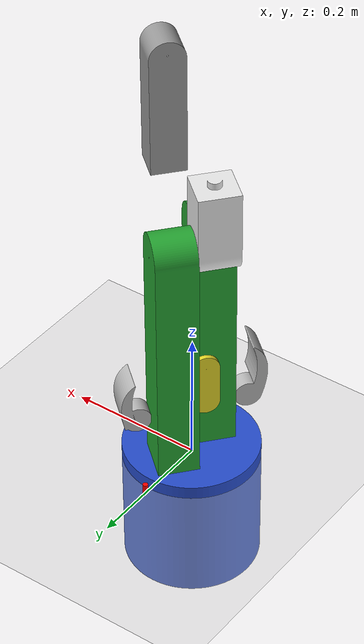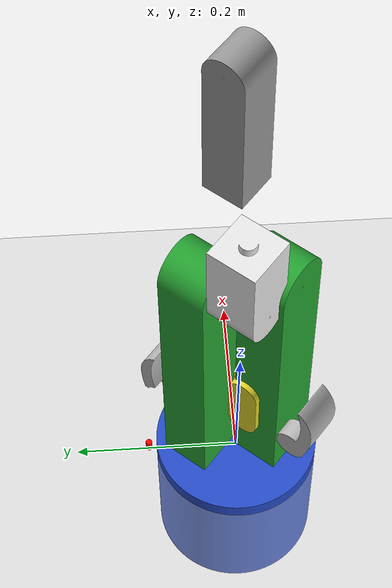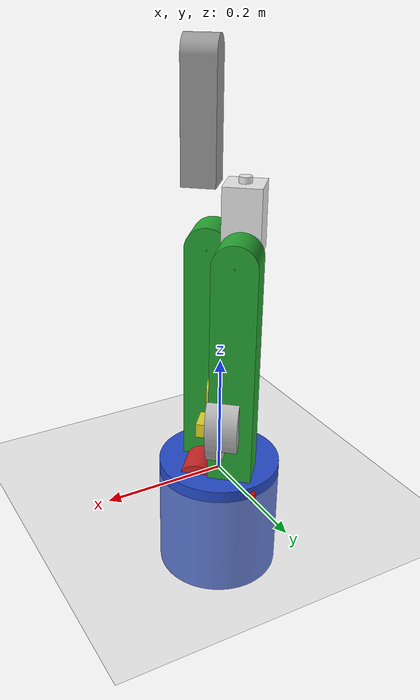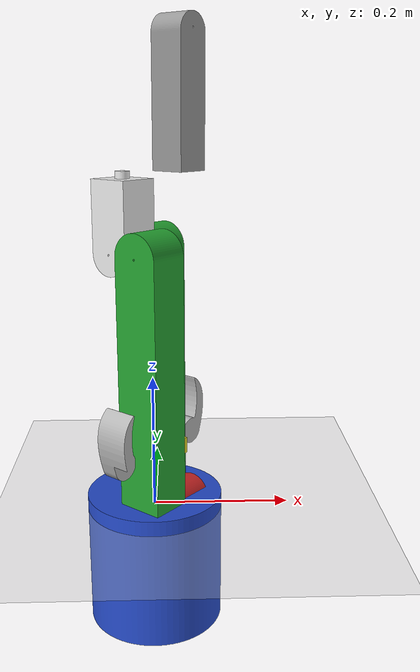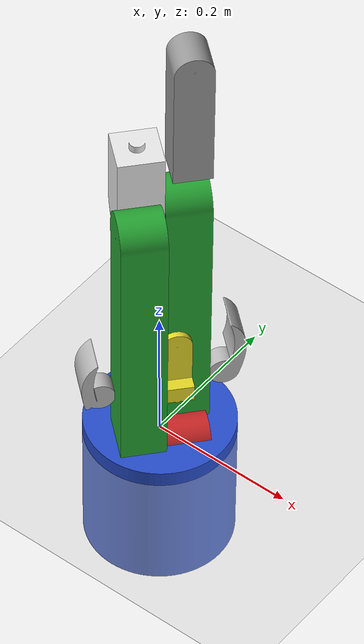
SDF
<sdf version="1.7">
 <world name="default">
  <model name="ground_plane">
   <static>1</static>
   <link name="link">
    <collision name="collision">
     <geometry><plane><normal>0 0 1</normal><size>100 100</size></plane></geometry>
     <surface><friction><ode><mu>100</mu><mu2>50</mu2></ode></friction></surface>
    </collision>
    <visual name="visual">
     <cast_shadows>0</cast_shadows>
     <geometry><plane><normal>0 0 1</normal><size>100 100</size></plane></geometry>
     <material>
      <script><uri>file://media/materials/scripts/gazebo.material</uri><name>Gazebo/Grey</name></script>
     </material>
    </visual>
   </link>
  </model>
  <model name="GS_arm">
   <joint name="joint_0" type="fixed">
    <pose relative_to="__model__">0 0 0 0 -0 0</pose>
    <parent>world</parent>
    <child>part_1</child>
   </joint>
   <link name="part_1">
    <pose relative_to="joint_0">0 0 0 0 -0 0</pose>
    <inertial>
     <pose>3.9e-05 0.000294 0.009984 0 -0 0</pose>
     <mass>0.0066099</mass>
     <inertia>
      <ixx>3.85576e-07</ixx>
      <ixy>-8.58175e-12</ixy>
      <ixz>-2.90426e-10</ixz>
      <iyy>3.85529e-07</iyy>
      <iyz>-1.62614e-09</iyz>
      <izz>3.30545e-07</izz>
     </inertia>
    </inertial>
    <collision name="part_1_collision">
     <pose>-0.048516 -0.048382 0.021683 -2.96311 -1.54079 1.39406</pose>
     <geometry>
      <mesh>
       <scale>1 1 1</scale>
       <uri>file:///home/nobel/workspace_arm/IRoC_U_arm/arm_ws/install/arm_description_pkg/share/arm_description_pkg/meshes_upright_xacro_copy/part_1.stl</uri>
      </mesh>
     </geometry>
    </collision>
    <visual name="part_1_visual">
     <pose>-0.048516 -0.048382 0.021683 -2.96311 -1.54079 1.39406</pose>
     <geometry>
      <mesh>
       <scale>1 1 1</scale>
       <uri>file:///home/nobel/workspace_arm/IRoC_U_arm/arm_ws/install/arm_description_pkg/share/arm_description_pkg/meshes_upright_xacro_copy/part_1.stl</uri>
      </mesh>
     </geometry>
     <material>
      <script><name>Gazebo/Blue</name><uri>file://media/materials/scripts/gazebo.material</uri></script>
     </material>
    </visual>
   </link>
   <joint name="joint1" type="revolute">
    <pose relative_to="part_1">9.2e-05 0.00059 0.019979 3.11574 -0.015232 -0.709027</pose>
    <parent>part_1</parent>
    <child>part_2</child>
    <axis>
     <xyz>0 0 1</xyz>
     <limit><lower>-3.14159</lower><upper>3.14159</upper><effort>1</effort><velocity>20</velocity></limit>
     <dynamics><spring_reference>0</spring_reference><spring_stiffness>0</spring_stiffness></dynamics>
    </axis>
   </joint>
   <link name="part_2">
    <pose relative_to="joint1">0 0 0 0 -0 0</pose>
    <inertial>
     <pose>0 -0 -0.006575 0 -0 0</pose>
     <mass>0.000480855</mass>
     <inertia>
      <ixx>9.21391e-09</ixx>
      <ixy>8.13977e-25</ixy>
      <ixz>-2.47505e-26</ixz>
      <iyy>9.28926e-09</iyy>
      <iyz>-9.64072e-27</iyz>
      <izz>2.95088e-09</izz>
     </inertia>
    </inertial>
    <collision name="part_2_collision">
     <pose>0.048859 0.002995 0.056094 0 -0 0</pose>
     <geometry>
      <mesh>
       <scale>1 1 1</scale>
       <uri>file:///home/nobel/workspace_arm/IRoC_U_arm/arm_ws/install/arm_description_pkg/share/arm_description_pkg/meshes_upright_xacro_copy/part_2.stl</uri>
      </mesh>
     </geometry>
    </collision>
    <visual name="part_2_visual">
     <pose>0.048859 0.002995 0.056094 0 -0 0</pose>
     <geometry>
      <mesh>
       <scale>1 1 1</scale>
       <uri>file:///home/nobel/workspace_arm/IRoC_U_arm/arm_ws/install/arm_description_pkg/share/arm_description_pkg/meshes_upright_xacro_copy/part_2.stl</uri>
      </mesh>
     </geometry>
     <material>
      <script><name>Gazebo/Red</name><uri>file://media/materials/scripts/gazebo.material</uri></script>
     </material>
    </visual>
   </link>
   <joint name="joint2" type="revolute">
    <pose relative_to="part_2">0 0.002995 -0.012 1.5708 -0 0</pose>
    <parent>part_2</parent>
    <child>arm_l2</child>
    <axis>
     <xyz>0 0 1</xyz>
     <limit><lower>-2.0944</lower><upper>2.0944</upper><effort>1</effort><velocity>20</velocity></limit>
     <dynamics><spring_reference>0</spring_reference><spring_stiffness>0</spring_stiffness></dynamics>
    </axis>
   </joint>
   <link name="arm_l2">
    <pose relative_to="joint2">0 0 0 0 -0 0</pose>
    <inertial>
     <pose>0 -0.019037 0.003 0 -0 0</pose>
     <mass>0.00180242</mass>
     <inertia>
      <ixx>2.9795e-07</ixx>
      <ixy>1.81175e-23</ixy>
      <ixz>3.23754e-21</ixz>
      <iyy>4.53246e-08</iyy>
      <iyz>6.38285e-22</iyz>
      <izz>2.67573e-07</izz>
     </inertia>
    </inertial>
    <collision name="arm_l2_collision">
     <pose>0.048859 0.068094 -0 -1.5708 0 0</pose>
     <geometry>
      <mesh>
       <scale>1 1 1</scale>
       <uri>file:///home/nobel/workspace_arm/IRoC_U_arm/arm_ws/install/arm_description_pkg/share/arm_description_pkg/meshes_upright_xacro_copy/part_3.stl</uri>
      </mesh>
     </geometry>
    </collision>
    <collision name="arm_l2_collision_1">
     <pose>-0.048859 0.068094 0.006 1.5708 -0 -3.14159</pose>
     <geometry>
      <mesh>
       <scale>1 1 1</scale>
       <uri>file:///home/nobel/workspace_arm/IRoC_U_arm/arm_ws/install/arm_description_pkg/share/arm_description_pkg/meshes_upright_xacro_copy/part_3.stl</uri>
      </mesh>
     </geometry>
    </collision>
    <visual name="arm_l2_visual">
     <pose>0.048859 0.068094 -0 -1.5708 0 0</pose>
     <geometry>
      <mesh>
       <scale>1 1 1</scale>
       <uri>file:///home/nobel/workspace_arm/IRoC_U_arm/arm_ws/install/arm_description_pkg/share/arm_description_pkg/meshes_upright_xacro_copy/part_3.stl</uri>
      </mesh>
     </geometry>
     <material>
      <script><name>Gazebo/Green</name><uri>file://media/materials/scripts/gazebo.material</uri></script>
     </material>
    </visual>
    <visual name="arm_l2_visual_1">
     <pose>-0.048859 0.068094 0.006 1.5708 -0 -3.14159</pose>
     <geometry>
      <mesh>
       <scale>1 1 1</scale>
       <uri>file:///home/nobel/workspace_arm/IRoC_U_arm/arm_ws/install/arm_description_pkg/share/arm_description_pkg/meshes_upright_xacro_copy/part_3.stl</uri>
      </mesh>
     </geometry>
     <material>
      <script><name>Gazebo/Green</name><uri>file://media/materials/scripts/gazebo.material</uri></script>
     </material>
    </visual>
   </link>
   <joint name="joint3" type="revolute">
    <pose relative_to="arm_l2">0 -0.03771 0 3.14159 -0 -3.1363</pose>
    <parent>arm_l2</parent>
    <child>part_4</child>
    <axis>
     <xyz>0 0 1</xyz>
     <limit><lower>-1.74533</lower><upper>1.74533</upper><effort>1</effort><velocity>20</velocity></limit>
     <dynamics><spring_reference>0</spring_reference><spring_stiffness>0</spring_stiffness></dynamics>
    </axis>
   </joint>
   <link name="part_4">
    <pose relative_to="joint3">0 0 0 0 -0 0</pose>
    <inertial>
     <pose>-0 -0.005712 -0.003 0 -0 0</pose>
     <mass>0.000534038</mass>
     <inertia>
      <ixx>1.16311e-08</ixx>
      <ixy>2.13202e-26</ixy>
      <ixz>4.94622e-25</ixz>
      <iyy>3.22798e-09</iyy>
      <iyz>-5.288e-26</iyz>
      <izz>1.1673e-08</izz>
     </inertia>
    </inertial>
    <collision name="part_4_collision">
     <pose>0.048859 0.105803 -0.006 -1.5708 -0 0</pose>
     <geometry>
      <mesh>
       <scale>1 1 1</scale>
       <uri>file:///home/nobel/workspace_arm/IRoC_U_arm/arm_ws/install/arm_description_pkg/share/arm_description_pkg/meshes_upright_xacro_copy/part_4.stl</uri>
      </mesh>
     </geometry>
    </collision>
    <visual name="part_4_visual">
     <pose>0.048859 0.105803 -0.006 -1.5708 -0 0</pose>
     <geometry>
      <mesh>
       <scale>1 1 1</scale>
       <uri>file:///home/nobel/workspace_arm/IRoC_U_arm/arm_ws/install/arm_description_pkg/share/arm_description_pkg/meshes_upright_xacro_copy/part_4.stl</uri>
      </mesh>
     </geometry>
     <material>
      <script><name>Gazebo/White</name><uri>file://media/materials/scripts/gazebo.material</uri></script>
     </material>
    </visual>
   </link>
   <joint name="joint4" type="revolute">
    <pose relative_to="part_4">-0 -0.013836 -0.003 1.5708 -0 -3.14159</pose>
    <parent>part_4</parent>
    <child>part_5</child>
    <axis>
     <xyz>0 0 1</xyz>
     <limit><lower>-6.28319</lower><upper>6.28319</upper><effort>1</effort><velocity>20</velocity></limit>
     <dynamics><spring_reference>0</spring_reference><spring_stiffness>0</spring_stiffness></dynamics>
    </axis>
   </joint>
   <link name="part_5">
    <pose relative_to="joint4">0 0 0 0 -0 0</pose>
    <inertial>
     <pose>0 -0 -0.009686 0 -0 0</pose>
     <mass>0.00050621</mass>
     <inertia>
      <ixx>1.72927e-08</ixx>
      <ixy>-8.6796e-25</ixy>
      <ixz>-1.20672e-26</ixz>
      <iyy>1.72574e-08</iyy>
      <iyz>-5.64784e-26</iyz>
      <izz>2.14451e-09</izz>
     </inertia>
    </inertial>
    <collision name="part_5_collision">
     <pose>0.048859 0.003 0.11964 0 -0 0</pose>
     <geometry>
      <mesh>
       <scale>1 1 1</scale>
       <uri>file:///home/nobel/workspace_arm/IRoC_U_arm/arm_ws/install/arm_description_pkg/share/arm_description_pkg/meshes_upright_xacro_copy/part_5.stl</uri>
      </mesh>
     </geometry>
    </collision>
    <visual name="part_5_visual">
     <pose>0.048859 0.003 0.11964 0 -0 0</pose>
     <geometry>
      <mesh>
       <scale>1 1 1</scale>
       <uri>file:///home/nobel/workspace_arm/IRoC_U_arm/arm_ws/install/arm_description_pkg/share/arm_description_pkg/meshes_upright_xacro_copy/part_5.stl</uri>
      </mesh>
     </geometry>
     <material>
      <script><name>Gazebo/Gray</name><uri>file://media/materials/scripts/gazebo.material</uri></script>
     </material>
    </visual>
   </link>
   <joint name="joint5" type="revolute">
    <pose relative_to="part_5">0.0025 -0 -0.018026 -1.5708 0.002925 1.5708</pose>
    <parent>part_5</parent>
    <child>arm_endvec</child>
    <axis>
     <xyz>0 0 1</xyz>
     <limit><lower>-0.785398</lower><upper>0.785398</upper><effort>1</effort><velocity>20</velocity></limit>
     <dynamics><spring_reference>0</spring_reference><spring_stiffness>0</spring_stiffness></dynamics>
    </axis>
   </joint>
   <link name="arm_endvec">
    <pose relative_to="joint5">0 0 0 0 -0 0</pose>
    <inertial>
     <pose>-0 0.002846 0.001236 0 -0 0</pose>
     <mass>0.000194547</mass>
     <inertia>
      <ixx>4.24422e-09</ixx>
      <ixy>9.2226e-25</ixy>
      <ixz>6.25588e-24</ixz>
      <iyy>3.33505e-09</iyy>
      <iyz>-1.20862e-10</iyz>
      <izz>1.39191e-09</izz>
     </inertia>
    </inertial>
    <collision name="arm_endvec_collision">
     <pose>-0.032241 0.057871 0.007 1.5708 -0 -3.14159</pose>
     <geometry>
      <mesh>
       <scale>1 1 1</scale>
       <uri>file:///home/nobel/workspace_arm/IRoC_U_arm/arm_ws/install/arm_description_pkg/share/arm_description_pkg/meshes_upright_xacro_copy/part_6.stl</uri>
      </mesh>
     </geometry>
    </collision>
    <collision name="arm_endvec_collision_1">
     <pose>-0.032241 -0.050871 -0.002 -1.5708 -0 -3.14159</pose>
     <geometry>
      <mesh>
       <scale>1 1 1</scale>
       <uri>file:///home/nobel/workspace_arm/IRoC_U_arm/arm_ws/install/arm_description_pkg/share/arm_description_pkg/meshes_upright_xacro_copy/part_8.stl</uri>
      </mesh>
     </geometry>
    </collision>
    <collision name="arm_endvec_collision_2">
     <pose>0.032241 0.057871 -0.002 -1.5708 0 0</pose>
     <geometry>
      <mesh>
       <scale>1 1 1</scale>
       <uri>file:///home/nobel/workspace_arm/IRoC_U_arm/arm_ws/install/arm_description_pkg/share/arm_description_pkg/meshes_upright_xacro_copy/part_6.stl</uri>
      </mesh>
     </geometry>
    </collision>
    <visual name="arm_endvec_visual">
     <pose>-0.032241 0.057871 0.007 1.5708 -0 -3.14159</pose>
     <geometry>
      <mesh>
       <scale>1 1 1</scale>
       <uri>file:///home/nobel/workspace_arm/IRoC_U_arm/arm_ws/install/arm_description_pkg/share/arm_description_pkg/meshes_upright_xacro_copy/part_6.stl</uri>
      </mesh>
     </geometry>
     <material>
      <script><name>Gazebo/Yellow</name><uri>file://media/materials/scripts/gazebo.material</uri></script>
     </material>
    </visual>
    <visual name="arm_endvec_visual_1">
     <pose>-0.032241 -0.050871 -0.002 -1.5708 -0 -3.14159</pose>
     <geometry>
      <mesh>
       <scale>1 1 1</scale>
       <uri>file:///home/nobel/workspace_arm/IRoC_U_arm/arm_ws/install/arm_description_pkg/share/arm_description_pkg/meshes_upright_xacro_copy/part_8.stl</uri>
      </mesh>
     </geometry>
     <material>
      <script><name>Gazebo/Yellow</name><uri>file://media/materials/scripts/gazebo.material</uri></script>
     </material>
    </visual>
    <visual name="arm_endvec_visual_2">
     <pose>0.032241 0.057871 -0.002 -1.5708 0 0</pose>
     <geometry>
      <mesh>
       <scale>1 1 1</scale>
       <uri>file:///home/nobel/workspace_arm/IRoC_U_arm/arm_ws/install/arm_description_pkg/share/arm_description_pkg/meshes_upright_xacro_copy/part_6.stl</uri>
      </mesh>
     </geometry>
     <material>
      <script><name>Gazebo/Yellow</name><uri>file://media/materials/scripts/gazebo.material</uri></script>
     </material>
    </visual>
   </link>
   <joint name="joint61" type="revolute">
    <pose relative_to="arm_endvec">-0 0.006 -0 -3.14159 -0 3.13985</pose>
    <parent>arm_endvec</parent>
    <child>part_7</child>
    <axis>
     <xyz>0 0 1</xyz>
     <limit><lower>0.00174533</lower><upper>0.785398</upper><effort>1</effort><velocity>20</velocity></limit>
     <dynamics><spring_reference>0</spring_reference><spring_stiffness>0</spring_stiffness></dynamics>
    </axis>
   </joint>
   <link name="part_7">
    <pose relative_to="joint61">0 0 0 0 -0 0</pose>
    <inertial>
     <pose>-0.001878 0.003822 -0.002191 0 -0 0</pose>
     <mass>0.000142293</mass>
     <inertia>
      <ixx>1.61923e-09</ixx>
      <ixy>2.89108e-10</ixy>
      <ixz>-7.89292e-11</ixz>
      <iyy>5.43842e-10</iyy>
      <iyz>1.64303e-10</iyz>
      <izz>1.59731e-09</izz>
     </inertia>
    </inertial>
    <collision name="part_7_collision">
     <pose>0.032241 -0.057871 0.002 1.5708 -0 0</pose>
     <geometry>
      <mesh>
       <scale>1 1 1</scale>
       <uri>file:///home/nobel/workspace_arm/IRoC_U_arm/arm_ws/install/arm_description_pkg/share/arm_description_pkg/meshes_upright_xacro_copy/part_7.stl</uri>
      </mesh>
     </geometry>
    </collision>
    <visual name="part_7_visual">
     <pose>0.032241 -0.057871 0.002 1.5708 -0 0</pose>
     <geometry>
      <mesh>
       <scale>1 1 1</scale>
       <uri>file:///home/nobel/workspace_arm/IRoC_U_arm/arm_ws/install/arm_description_pkg/share/arm_description_pkg/meshes_upright_xacro_copy/part_7.stl</uri>
      </mesh>
     </geometry>
    </visual>
   </link>
   <joint name="joint62" type="revolute">
    <pose relative_to="arm_endvec">-0 0.006 0.005 0 -0 0.001745</pose>
    <parent>arm_endvec</parent>
    <child>part_7_2</child>
    <axis>
     <xyz>0 0 1</xyz>
     <limit><lower>0.00174533</lower><upper>0.785398</upper><effort>1</effort><velocity>20</velocity></limit>
     <dynamics><spring_reference>0</spring_reference><spring_stiffness>0</spring_stiffness></dynamics>
    </axis>
   </joint>
   <link name="part_7_2">
    <pose relative_to="joint62">0 0 0 0 -0 0</pose>
    <inertial>
     <pose>-0.001878 0.003822 -0.002191 0 -0 0</pose>
     <mass>0.000142293</mass>
     <inertia>
      <ixx>1.61923e-09</ixx>
      <ixy>2.89108e-10</ixy>
      <ixz>-7.89292e-11</ixz>
      <iyy>5.43842e-10</iyy>
      <iyz>1.64303e-10</iyz>
      <izz>1.59731e-09</izz>
     </inertia>
    </inertial>
    <collision name="part_7_2_collision">
     <pose>0.032241 -0.057871 0.002 1.5708 -0 0</pose>
     <geometry>
      <mesh>
       <scale>1 1 1</scale>
       <uri>file:///home/nobel/workspace_arm/IRoC_U_arm/arm_ws/install/arm_description_pkg/share/arm_description_pkg/meshes_upright_xacro_copy/part_7.stl</uri>
      </mesh>
     </geometry>
    </collision>
    <visual name="part_7_2_visual">
     <pose>0.032241 -0.057871 0.002 1.5708 -0 0</pose>
     <geometry>
      <mesh>
       <scale>1 1 1</scale>
       <uri>file:///home/nobel/workspace_arm/IRoC_U_arm/arm_ws/install/arm_description_pkg/share/arm_description_pkg/meshes_upright_xacro_copy/part_7.stl</uri>
      </mesh>
     </geometry>
    </visual>
   </link>
   <static>0</static>
   <plugin name="gazebo_ros2_control" filename="libgazebo_ros2_control.so">
    <robot_param>robot_description</robot_param>
    <robot_param_node>robot_state_publisher</robot_param_node>
    <parameters>/home/nobel/workspace_arm/IRoC_U_arm/arm_ws/install/arm_controller_pkg/share/arm_controller_pkg/config/arm_controller_ros2.yaml</parameters>
   </plugin>
   <pose>3.6e-05 7.2e-05 0.00016 0.014155 -0.005468 -0.000852</pose>
  </model>
  <model name="unit_cylinder">
   <link name="link">
    <inertial>
     <mass>0.2</mass>
     <inertia>
      <ixx>0.0291667</ixx>
      <ixy>0</ixy>
      <ixz>0</ixz>
      <iyy>0.0291667</iyy>
      <iyz>0</iyz>
      <izz>0.025</izz>
     </inertia>
    </inertial>
    <visual name="visual">
     <geometry><cylinder><radius>0.004</radius><length>0.015</length></cylinder></geometry>
     <material>
      <script><name>Gazebo/Grey</name><uri>file://media/materials/scripts/gazebo.material</uri></script>
      <shader type="pixel"><normal_map>__default__</normal_map></shader>
      <ambient>1 0 0 1</ambient>
      <diffuse>1 0 0 1</diffuse>
      <specular>1 0 0 1</specular>
      <emissive>0 0 0 1</emissive>
     </material>
    </visual>
    <collision name="collision">
     <geometry><cylinder><radius>0.004</radius><length>0.015</length></cylinder></geometry>
     <surface>
      <friction>
       <ode><mu>1</mu><mu2>1</mu2><fdir1>0 0 0</fdir1><slip1>0</slip1><slip2>0</slip2></ode>
       <torsional>
        <coefficient>1</coefficient>
        <patch_radius>0</patch_radius>
        <surface_radius>0</surface_radius>
        <use_patch_radius>1</use_patch_radius>
        <ode><slip>0</slip></ode>
       </torsional>
      </friction>
      <bounce><restitution_coefficient>0</restitution_coefficient><threshold>1e+06</threshold></bounce>
      <contact>
       <collide_without_contact>0</collide_without_contact>
       <collide_without_contact_bitmask>1</collide_without_contact_bitmask>
       <collide_bitmask>1</collide_bitmask>
       <ode>
        <soft_cfm>0</soft_cfm>
        <soft_erp>0.2</soft_erp>
        <kp>1e+13</kp>
        <kd>1</kd>
        <max_vel>0.01</max_vel>
        <min_depth>0</min_depth>
       </ode>
       <bullet>
        <split_impulse>1</split_impulse>
        <split_impulse_penetration_threshold>-0.01</split_impulse_penetration_threshold>
        <soft_cfm>0</soft_cfm>
        <soft_erp>0.2</soft_erp>
        <kp>1e+13</kp>
        <kd>1</kd>
       </bullet>
      </contact>
     </surface>
    </collision>
   </link>
   <static>0</static>
   <pose>0.001199 0.109976 0.00749 3.14159 8e-05 8.8e-05</pose>
  </model>
  <model name="unit_cylinder_clone">
   <link name="link">
    <inertial>
     <mass>0.2</mass>
     <inertia>
      <ixx>0.0291667</ixx>
      <ixy>0</ixy>
      <ixz>0</ixz>
      <iyy>0.0291667</iyy>
      <iyz>0</iyz>
      <izz>0.025</izz>
     </inertia>
    </inertial>
    <visual name="visual">
     <geometry><cylinder><radius>0.004</radius><length>0.015</length></cylinder></geometry>
     <material>
      <script><name>Gazebo/Grey</name><uri>file://media/materials/scripts/gazebo.material</uri></script>
      <shader type="pixel"><normal_map>__default__</normal_map></shader>
      <ambient>0 0 1 1</ambient>
      <diffuse>0 0 1 1</diffuse>
      <specular>0 0 0.9 1</specular>
      <emissive>0 0 0 1</emissive>
     </material>
    </visual>
    <collision name="collision">
     <geometry><cylinder><radius>0.004</radius><length>0.015</length></cylinder></geometry>
     <surface>
      <friction>
       <ode><mu>1</mu><mu2>1</mu2><fdir1>0 0 0</fdir1><slip1>0</slip1><slip2>0</slip2></ode>
       <torsional>
        <coefficient>1</coefficient>
        <patch_radius>0</patch_radius>
        <surface_radius>0</surface_radius>
        <use_patch_radius>1</use_patch_radius>
        <ode><slip>0</slip></ode>
       </torsional>
      </friction>
      <bounce><restitution_coefficient>0</restitution_coefficient><threshold>1e+06</threshold></bounce>
      <contact>
       <collide_without_contact>0</collide_without_contact>
       <collide_without_contact_bitmask>1</collide_without_contact_bitmask>
       <collide_bitmask>1</collide_bitmask>
       <ode>
        <soft_cfm>0</soft_cfm>
        <soft_erp>0.2</soft_erp>
        <kp>1e+13</kp>
        <kd>1</kd>
        <max_vel>0.01</max_vel>
        <min_depth>0</min_depth>
       </ode>
       <bullet>
        <split_impulse>1</split_impulse>
        <split_impulse_penetration_threshold>-0.01</split_impulse_penetration_threshold>
        <soft_cfm>0</soft_cfm>
        <soft_erp>0.2</soft_erp>
        <kp>1e+13</kp>
        <kd>1</kd>
       </bullet>
      </contact>
     </surface>
    </collision>
   </link>
   <static>0</static>
   <pose>0.086413 0.000702 0.007491 3.14155 -0.000152 8.8e-05</pose>
  </model>
 </world>
</sdf>
